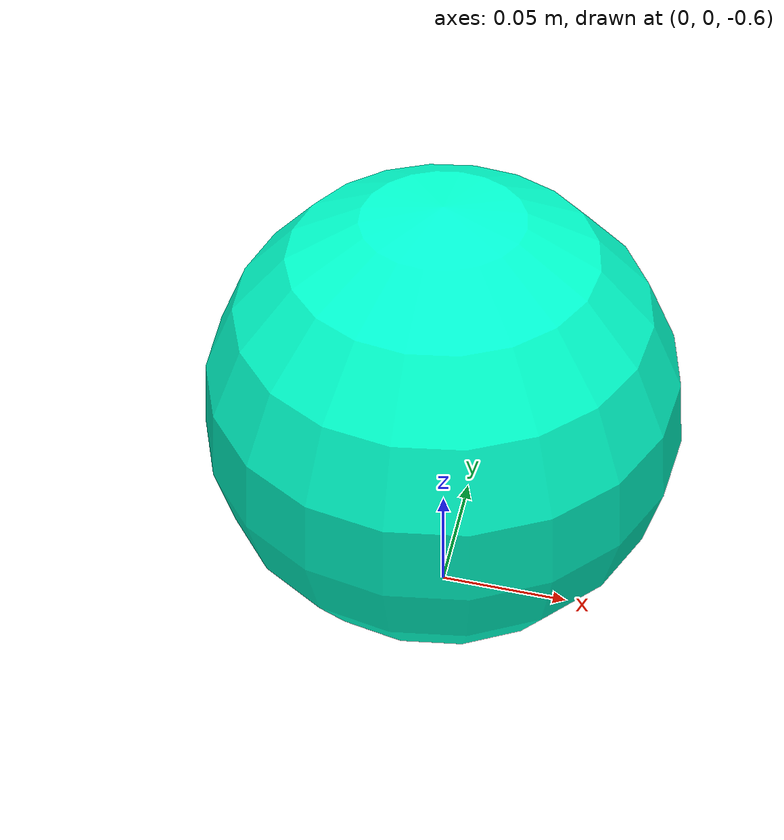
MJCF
<mujoco model="pendulum_actuated">
  <!-- 重力方向 -->
  <option gravity="0 0 -9.81"/>

  <!-- 关节阻尼（粘性摩擦） -->
  <default>
    <joint damping="0.1"/>
  </default>

  <worldbody>
    <!-- 固定支点 -->
    <body name="pivot" pos="0 0 0">
      <joint name="pivot_joint" type="hinge" axis="0 0 1"/>

      <!-- 摆臂末端 -->
      <body name="arm" pos="0 0 -0.5">
        <geom type="sphere" size="0.08" mass="1" rgba="0 1 0.8 1" friction="1 0.005 0.005"/>
        <inertial pos="0 0 0" mass="1" diaginertia="0.001 0.001 0.001"/>
      </body>
    </body>
  </worldbody>

  <!-- 执行器：控制关节力矩 -->
  <actuator>
    <motor joint="pivot_joint" ctrllimited="false" ctrlrange="-10 10"/>
  </actuator>
</mujoco>
